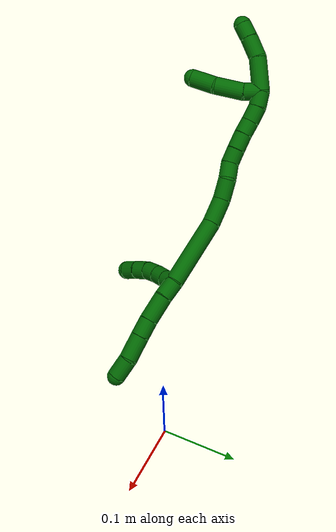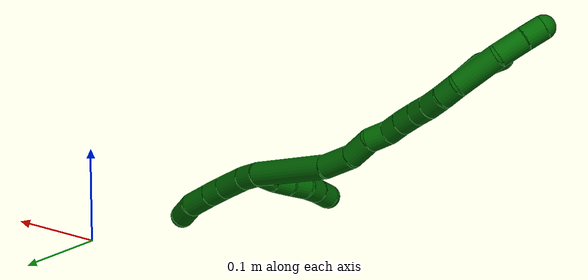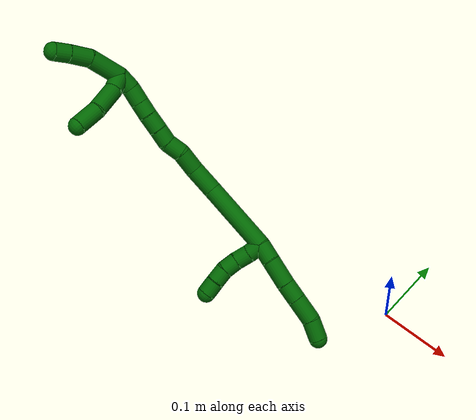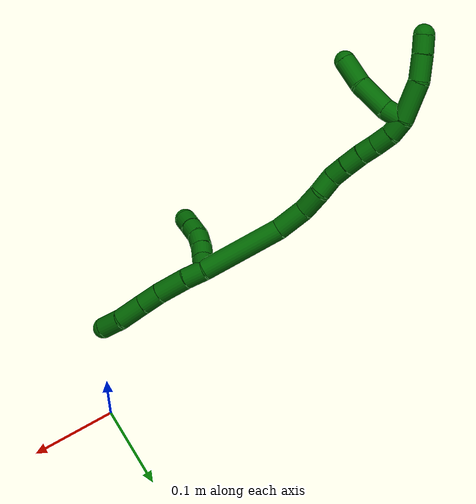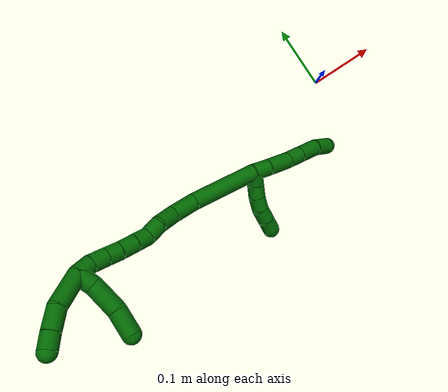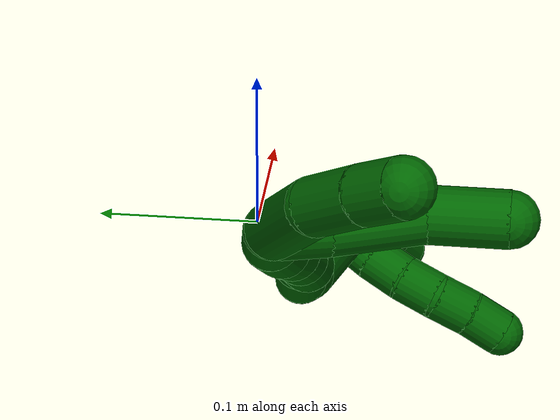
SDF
<sdf version="1.7">
 <world name="default">
  <model name="6">
   <static>0</static>
   <link name="6">
    <collision name="collision-cylinder-e_1_2_8">
     <pose>0.001411 0.000863 -0.012428 -3.07225 0.11276 -2.03953</pose>
     <geometry><cylinder><radius>0.0125</radius><length>0.025075</length></cylinder></geometry>
     <surface>
      <friction><ode><mu>1.16</mu><mu2>1.16</mu2><slip1>0</slip1><slip2>0</slip2></ode></friction>
      <contact><ode><kp>1e+06</kp><kd>1</kd><max_vel>0</max_vel><min_depth>0.001</min_depth></ode></contact>
     </surface>
    </collision>
    <visual name="visual-cylinder-e_1_2_8">
     <pose>0.001411 0.000863 -0.012428 -3.07225 0.11276 -2.03953</pose>
     <geometry><cylinder><radius>0.0125</radius><length>0.025075</length></cylinder></geometry>
     <material><ambient>0 0.392157 0.003922 1</ambient></material>
    </visual>
    <collision name="collision-cylinder-e_2_8_9">
     <pose>0.006269 0.001611 -0.043036 3.13523 0.18739 3.07389</pose>
     <geometry><cylinder><radius>0.0125</radius><length>0.03701</length></cylinder></geometry>
     <surface>
      <friction><ode><mu>1.16</mu><mu2>1.16</mu2><slip1>0</slip1><slip2>0</slip2></ode></friction>
      <contact><ode><kp>1e+06</kp><kd>1</kd><max_vel>0</max_vel><min_depth>0.001</min_depth></ode></contact>
     </surface>
    </collision>
    <visual name="visual-cylinder-e_2_8_9">
     <pose>0.006269 0.001611 -0.043036 3.13523 0.18739 3.07389</pose>
     <geometry><cylinder><radius>0.0125</radius><length>0.03701</length></cylinder></geometry>
     <material><ambient>0 0.392157 0.003922 1</ambient></material>
    </visual>
    <collision name="collision-cylinder-e_3_9_10">
     <pose>0.012014 0.000511 -0.073403 3.06106 0.185745 2.32506</pose>
     <geometry><cylinder><radius>0.0125</radius><length>0.02488</length></cylinder></geometry>
     <surface>
      <friction><ode><mu>1.16</mu><mu2>1.16</mu2><slip1>0</slip1><slip2>0</slip2></ode></friction>
      <contact><ode><kp>1e+06</kp><kd>1</kd><max_vel>0</max_vel><min_depth>0.001</min_depth></ode></contact>
     </surface>
    </collision>
    <visual name="visual-cylinder-e_3_9_10">
     <pose>0.012014 0.000511 -0.073403 3.06106 0.185745 2.32506</pose>
     <geometry><cylinder><radius>0.0125</radius><length>0.02488</length></cylinder></geometry>
     <material><ambient>0 0.392157 0.003922 1</ambient></material>
    </visual>
    <collision name="collision-cylinder-e_4_10_11">
     <pose>0.017793 -0.002055 -0.102342 3.0474 0.20404 2.2787</pose>
     <geometry><cylinder><radius>0.0125</radius><length>0.034367</length></cylinder></geometry>
     <surface>
      <friction><ode><mu>1.16</mu><mu2>1.16</mu2><slip1>0</slip1><slip2>0</slip2></ode></friction>
      <contact><ode><kp>1e+06</kp><kd>1</kd><max_vel>0</max_vel><min_depth>0.001</min_depth></ode></contact>
     </surface>
    </collision>
    <visual name="visual-cylinder-e_4_10_11">
     <pose>0.017793 -0.002055 -0.102342 3.0474 0.20404 2.2787</pose>
     <geometry><cylinder><radius>0.0125</radius><length>0.034367</length></cylinder></geometry>
     <material><ambient>0 0.392157 0.003922 1</ambient></material>
    </visual>
    <collision name="collision-cylinder-e_5_11_6">
     <pose>0.027216 -0.003188 -0.132132 -3.10712 0.427359 -2.98303</pose>
     <geometry><cylinder><radius>0.0125</radius><length>0.028668</length></cylinder></geometry>
     <surface>
      <friction><ode><mu>1.16</mu><mu2>1.16</mu2><slip1>0</slip1><slip2>0</slip2></ode></friction>
      <contact><ode><kp>1e+06</kp><kd>1</kd><max_vel>0</max_vel><min_depth>0.001</min_depth></ode></contact>
     </surface>
    </collision>
    <visual name="visual-cylinder-e_5_11_6">
     <pose>0.027216 -0.003188 -0.132132 -3.10712 0.427359 -2.98303</pose>
     <geometry><cylinder><radius>0.0125</radius><length>0.028668</length></cylinder></geometry>
     <material><ambient>0 0.392157 0.003922 1</ambient></material>
    </visual>
    <collision name="collision-cylinder-e_1_2_12">
     <pose>0.008198 0.005669 0.000812 -1.42847 0.961064 -0.848889</pose>
     <geometry><cylinder><radius>0.0125</radius><length>0.02</length></cylinder></geometry>
     <surface>
      <friction><ode><mu>1.16</mu><mu2>1.16</mu2><slip1>0</slip1><slip2>0</slip2></ode></friction>
      <contact><ode><kp>1e+06</kp><kd>1</kd><max_vel>0</max_vel><min_depth>0.001</min_depth></ode></contact>
     </surface>
    </collision>
    <visual name="visual-cylinder-e_1_2_12">
     <pose>0.008198 0.005669 0.000812 -1.42847 0.961064 -0.848889</pose>
     <geometry><cylinder><radius>0.0125</radius><length>0.02</length></cylinder></geometry>
     <material><ambient>0 0.392157 0.003922 1</ambient></material>
    </visual>
    <collision name="collision-cylinder-e_2_12_13">
     <pose>0.023837 0.017802 0.003311 -1.31555 0.839157 -0.663722</pose>
     <geometry><cylinder><radius>0.0125</radius><length>0.02</length></cylinder></geometry>
     <surface>
      <friction><ode><mu>1.16</mu><mu2>1.16</mu2><slip1>0</slip1><slip2>0</slip2></ode></friction>
      <contact><ode><kp>1e+06</kp><kd>1</kd><max_vel>0</max_vel><min_depth>0.001</min_depth></ode></contact>
     </surface>
    </collision>
    <visual name="visual-cylinder-e_2_12_13">
     <pose>0.023837 0.017802 0.003311 -1.31555 0.839157 -0.663722</pose>
     <geometry><cylinder><radius>0.0125</radius><length>0.02</length></cylinder></geometry>
     <material><ambient>0 0.392157 0.003922 1</ambient></material>
    </visual>
    <collision name="collision-cylinder-e_3_13_14">
     <pose>0.038398 0.031272 0.005459 -1.50516 0.792399 -0.746705</pose>
     <geometry><cylinder><radius>0.0125</radius><length>0.02</length></cylinder></geometry>
     <surface>
      <friction><ode><mu>1.16</mu><mu2>1.16</mu2><slip1>0</slip1><slip2>0</slip2></ode></friction>
      <contact><ode><kp>1e+06</kp><kd>1</kd><max_vel>0</max_vel><min_depth>0.001</min_depth></ode></contact>
     </surface>
    </collision>
    <visual name="visual-cylinder-e_3_13_14">
     <pose>0.038398 0.031272 0.005459 -1.50516 0.792399 -0.746705</pose>
     <geometry><cylinder><radius>0.0125</radius><length>0.02</length></cylinder></geometry>
     <material><ambient>0 0.392157 0.003922 1</ambient></material>
    </visual>
    <collision name="collision-cylinder-e_4_14_15">
     <pose>0.052709 0.044924 0.003886 -1.86776 0.802468 -1.0414</pose>
     <geometry><cylinder><radius>0.0125</radius><length>0.02</length></cylinder></geometry>
     <surface>
      <friction><ode><mu>1.16</mu><mu2>1.16</mu2><slip1>0</slip1><slip2>0</slip2></ode></friction>
      <contact><ode><kp>1e+06</kp><kd>1</kd><max_vel>0</max_vel><min_depth>0.001</min_depth></ode></contact>
     </surface>
    </collision>
    <visual name="visual-cylinder-e_4_14_15">
     <pose>0.052709 0.044924 0.003886 -1.86776 0.802468 -1.0414</pose>
     <geometry><cylinder><radius>0.0125</radius><length>0.02</length></cylinder></geometry>
     <material><ambient>0 0.392157 0.003922 1</ambient></material>
    </visual>
    <collision name="collision-cylinder-e_5_15_5">
     <pose>0.067653 0.057515 -0.000275 -1.91439 0.887221 -1.18711</pose>
     <geometry><cylinder><radius>0.0125</radius><length>0.02</length></cylinder></geometry>
     <surface>
      <friction><ode><mu>1.16</mu><mu2>1.16</mu2><slip1>0</slip1><slip2>0</slip2></ode></friction>
      <contact><ode><kp>1e+06</kp><kd>1</kd><max_vel>0</max_vel><min_depth>0.001</min_depth></ode></contact>
     </surface>
    </collision>
    <visual name="visual-cylinder-e_5_15_5">
     <pose>0.067653 0.057515 -0.000275 -1.91439 0.887221 -1.18711</pose>
     <geometry><cylinder><radius>0.0125</radius><length>0.02</length></cylinder></geometry>
     <material><ambient>0 0.392157 0.003922 1</ambient></material>
    </visual>
    <collision name="collision-cylinder-e_1_2_16">
     <pose>0.002024 -5.2e-05 0.049777 0.001042 0.04064 2.1e-05</pose>
     <geometry><cylinder><radius>0.0125</radius><length>0.099637</length></cylinder></geometry>
     <surface>
      <friction><ode><mu>1.16</mu><mu2>1.16</mu2><slip1>0</slip1><slip2>0</slip2></ode></friction>
      <contact><ode><kp>1e+06</kp><kd>1</kd><max_vel>0</max_vel><min_depth>0.001</min_depth></ode></contact>
     </surface>
    </collision>
    <visual name="visual-cylinder-e_1_2_16">
     <pose>0.002024 -5.2e-05 0.049777 0.001042 0.04064 2.1e-05</pose>
     <geometry><cylinder><radius>0.0125</radius><length>0.099637</length></cylinder></geometry>
     <material><ambient>0 0.392157 0.003922 1</ambient></material>
    </visual>
    <collision name="collision-cylinder-e_2_16_17">
     <pose>0.002241 0.002695 0.118002 -0.150588 -0.096533 0.007288</pose>
     <geometry><cylinder><radius>0.0125</radius><length>0.037491</length></cylinder></geometry>
     <surface>
      <friction><ode><mu>1.16</mu><mu2>1.16</mu2><slip1>0</slip1><slip2>0</slip2></ode></friction>
      <contact><ode><kp>1e+06</kp><kd>1</kd><max_vel>0</max_vel><min_depth>0.001</min_depth></ode></contact>
     </surface>
    </collision>
    <visual name="visual-cylinder-e_2_16_17">
     <pose>0.002241 0.002695 0.118002 -0.150588 -0.096533 0.007288</pose>
     <geometry><cylinder><radius>0.0125</radius><length>0.037491</length></cylinder></geometry>
     <material><ambient>0 0.392157 0.003922 1</ambient></material>
    </visual>
    <collision name="collision-cylinder-e_3_17_18">
     <pose>-0.004422 0.00988 0.149699 -0.319628 -0.33485 0.05447</pose>
     <geometry><cylinder><radius>0.0125</radius><length>0.029556</length></cylinder></geometry>
     <surface>
      <friction><ode><mu>1.16</mu><mu2>1.16</mu2><slip1>0</slip1><slip2>0</slip2></ode></friction>
      <contact><ode><kp>1e+06</kp><kd>1</kd><max_vel>0</max_vel><min_depth>0.001</min_depth></ode></contact>
     </surface>
    </collision>
    <visual name="visual-cylinder-e_3_17_18">
     <pose>-0.004422 0.00988 0.149699 -0.319628 -0.33485 0.05447</pose>
     <geometry><cylinder><radius>0.0125</radius><length>0.029556</length></cylinder></geometry>
     <material><ambient>0 0.392157 0.003922 1</ambient></material>
    </visual>
    <collision name="collision-cylinder-e_4_18_19">
     <pose>-0.009509 0.018632 0.17364 -0.387801 -0.019988 0.003925</pose>
     <geometry><cylinder><radius>0.0125</radius><length>0.023101</length></cylinder></geometry>
     <surface>
      <friction><ode><mu>1.16</mu><mu2>1.16</mu2><slip1>0</slip1><slip2>0</slip2></ode></friction>
      <contact><ode><kp>1e+06</kp><kd>1</kd><max_vel>0</max_vel><min_depth>0.001</min_depth></ode></contact>
     </surface>
    </collision>
    <visual name="visual-cylinder-e_4_18_19">
     <pose>-0.009509 0.018632 0.17364 -0.387801 -0.019988 0.003925</pose>
     <geometry><cylinder><radius>0.0125</radius><length>0.023101</length></cylinder></geometry>
     <material><ambient>0 0.392157 0.003922 1</ambient></material>
    </visual>
    <collision name="collision-cylinder-e_5_19_20">
     <pose>-0.012785 0.024711 0.194471 -0.167238 -0.28788 0.024295</pose>
     <geometry><cylinder><radius>0.0125</radius><length>0.021451</length></cylinder></geometry>
     <surface>
      <friction><ode><mu>1.16</mu><mu2>1.16</mu2><slip1>0</slip1><slip2>0</slip2></ode></friction>
      <contact><ode><kp>1e+06</kp><kd>1</kd><max_vel>0</max_vel><min_depth>0.001</min_depth></ode></contact>
     </surface>
    </collision>
    <visual name="visual-cylinder-e_5_19_20">
     <pose>-0.012785 0.024711 0.194471 -0.167238 -0.28788 0.024295</pose>
     <geometry><cylinder><radius>0.0125</radius><length>0.021451</length></cylinder></geometry>
     <material><ambient>0 0.392157 0.003922 1</ambient></material>
    </visual>
    <collision name="collision-cylinder-e_6_20_21">
     <pose>-0.018609 0.02803 0.215887 -0.141543 -0.239261 0.017042</pose>
     <geometry><cylinder><radius>0.0125</radius><length>0.023447</length></cylinder></geometry>
     <surface>
      <friction><ode><mu>1.16</mu><mu2>1.16</mu2><slip1>0</slip1><slip2>0</slip2></ode></friction>
      <contact><ode><kp>1e+06</kp><kd>1</kd><max_vel>0</max_vel><min_depth>0.001</min_depth></ode></contact>
     </surface>
    </collision>
    <visual name="visual-cylinder-e_6_20_21">
     <pose>-0.018609 0.02803 0.215887 -0.141543 -0.239261 0.017042</pose>
     <geometry><cylinder><radius>0.0125</radius><length>0.023447</length></cylinder></geometry>
     <material><ambient>0 0.392157 0.003922 1</ambient></material>
    </visual>
    <collision name="collision-cylinder-e_7_21_22">
     <pose>-0.023626 0.030252 0.236912 -0.063071 -0.225313 0.007138</pose>
     <geometry><cylinder><radius>0.0125</radius><length>0.020044</length></cylinder></geometry>
     <surface>
      <friction><ode><mu>1.16</mu><mu2>1.16</mu2><slip1>0</slip1><slip2>0</slip2></ode></friction>
      <contact><ode><kp>1e+06</kp><kd>1</kd><max_vel>0</max_vel><min_depth>0.001</min_depth></ode></contact>
     </surface>
    </collision>
    <visual name="visual-cylinder-e_7_21_22">
     <pose>-0.023626 0.030252 0.236912 -0.063071 -0.225313 0.007138</pose>
     <geometry><cylinder><radius>0.0125</radius><length>0.020044</length></cylinder></geometry>
     <material><ambient>0 0.392157 0.003922 1</ambient></material>
    </visual>
    <collision name="collision-cylinder-e_8_22_23">
     <pose>-0.029192 0.032109 0.257696 -0.112029 -0.291143 0.016441</pose>
     <geometry><cylinder><radius>0.0125</radius><length>0.023183</length></cylinder></geometry>
     <surface>
      <friction><ode><mu>1.16</mu><mu2>1.16</mu2><slip1>0</slip1><slip2>0</slip2></ode></friction>
      <contact><ode><kp>1e+06</kp><kd>1</kd><max_vel>0</max_vel><min_depth>0.001</min_depth></ode></contact>
     </surface>
    </collision>
    <visual name="visual-cylinder-e_8_22_23">
     <pose>-0.029192 0.032109 0.257696 -0.112029 -0.291143 0.016441</pose>
     <geometry><cylinder><radius>0.0125</radius><length>0.023183</length></cylinder></geometry>
     <material><ambient>0 0.392157 0.003922 1</ambient></material>
    </visual>
    <collision name="collision-cylinder-e_9_23_1">
     <pose>-0.035541 0.03717 0.278643 -0.367776 -0.277118 0.051862</pose>
     <geometry><cylinder><radius>0.0125</radius><length>0.02209</length></cylinder></geometry>
     <surface>
      <friction><ode><mu>1.16</mu><mu2>1.16</mu2><slip1>0</slip1><slip2>0</slip2></ode></friction>
      <contact><ode><kp>1e+06</kp><kd>1</kd><max_vel>0</max_vel><min_depth>0.001</min_depth></ode></contact>
     </surface>
    </collision>
    <visual name="visual-cylinder-e_9_23_1">
     <pose>-0.035541 0.03717 0.278643 -0.367776 -0.277118 0.051862</pose>
     <geometry><cylinder><radius>0.0125</radius><length>0.02209</length></cylinder></geometry>
     <material><ambient>0 0.392157 0.003922 1</ambient></material>
    </visual>
    <collision name="collision-cylinder-e_1_1_24">
     <pose>-0.035335 0.050813 0.282672 -2.11052 0.274789 -0.478659</pose>
     <geometry><cylinder><radius>0.0125</radius><length>0.023793</length></cylinder></geometry>
     <surface>
      <friction><ode><mu>1.16</mu><mu2>1.16</mu2><slip1>0</slip1><slip2>0</slip2></ode></friction>
      <contact><ode><kp>1e+06</kp><kd>1</kd><max_vel>0</max_vel><min_depth>0.001</min_depth></ode></contact>
     </surface>
    </collision>
    <visual name="visual-cylinder-e_1_1_24">
     <pose>-0.035335 0.050813 0.282672 -2.11052 0.274789 -0.478659</pose>
     <geometry><cylinder><radius>0.0125</radius><length>0.023793</length></cylinder></geometry>
     <material><ambient>0 0.392157 0.003922 1</ambient></material>
    </visual>
    <collision name="collision-cylinder-e_2_24_25">
     <pose>-0.028019 0.079953 0.270849 -1.86905 0.199599 -0.269439</pose>
     <geometry><cylinder><radius>0.0125</radius><length>0.04124</length></cylinder></geometry>
     <surface>
      <friction><ode><mu>1.16</mu><mu2>1.16</mu2><slip1>0</slip1><slip2>0</slip2></ode></friction>
      <contact><ode><kp>1e+06</kp><kd>1</kd><max_vel>0</max_vel><min_depth>0.001</min_depth></ode></contact>
     </surface>
    </collision>
    <visual name="visual-cylinder-e_2_24_25">
     <pose>-0.028019 0.079953 0.270849 -1.86905 0.199599 -0.269439</pose>
     <geometry><cylinder><radius>0.0125</radius><length>0.04124</length></cylinder></geometry>
     <material><ambient>0 0.392157 0.003922 1</ambient></material>
    </visual>
    <collision name="collision-cylinder-e_3_25_4">
     <pose>-0.017573 0.115458 0.263103 -1.68199 0.372152 -0.414834</pose>
     <geometry><cylinder><radius>0.0125</radius><length>0.034967</length></cylinder></geometry>
     <surface>
      <friction><ode><mu>1.16</mu><mu2>1.16</mu2><slip1>0</slip1><slip2>0</slip2></ode></friction>
      <contact><ode><kp>1e+06</kp><kd>1</kd><max_vel>0</max_vel><min_depth>0.001</min_depth></ode></contact>
     </surface>
    </collision>
    <visual name="visual-cylinder-e_3_25_4">
     <pose>-0.017573 0.115458 0.263103 -1.68199 0.372152 -0.414834</pose>
     <geometry><cylinder><radius>0.0125</radius><length>0.034967</length></cylinder></geometry>
     <material><ambient>0 0.392157 0.003922 1</ambient></material>
    </visual>
    <collision name="collision-cylinder-e_1_1_26">
     <pose>-0.042319 0.055535 0.307024 -0.667107 -0.158456 0.055006</pose>
     <geometry><cylinder><radius>0.0125</radius><length>0.047612</length></cylinder></geometry>
     <surface>
      <friction><ode><mu>1.16</mu><mu2>1.16</mu2><slip1>0</slip1><slip2>0</slip2></ode></friction>
      <contact><ode><kp>1e+06</kp><kd>1</kd><max_vel>0</max_vel><min_depth>0.001</min_depth></ode></contact>
     </surface>
    </collision>
    <visual name="visual-cylinder-e_1_1_26">
     <pose>-0.042319 0.055535 0.307024 -0.667107 -0.158456 0.055006</pose>
     <geometry><cylinder><radius>0.0125</radius><length>0.047612</length></cylinder></geometry>
     <material><ambient>0 0.392157 0.003922 1</ambient></material>
    </visual>
    <collision name="collision-cylinder-e_2_26_27">
     <pose>-0.046042 0.082392 0.334503 -0.939061 0.002194 -0.001113</pose>
     <geometry><cylinder><radius>0.0125</radius><length>0.030516</length></cylinder></geometry>
     <surface>
      <friction><ode><mu>1.16</mu><mu2>1.16</mu2><slip1>0</slip1><slip2>0</slip2></ode></friction>
      <contact><ode><kp>1e+06</kp><kd>1</kd><max_vel>0</max_vel><min_depth>0.001</min_depth></ode></contact>
     </surface>
    </collision>
    <visual name="visual-cylinder-e_2_26_27">
     <pose>-0.046042 0.082392 0.334503 -0.939061 0.002194 -0.001113</pose>
     <geometry><cylinder><radius>0.0125</radius><length>0.030516</length></cylinder></geometry>
     <material><ambient>0 0.392157 0.003922 1</ambient></material>
    </visual>
    <collision name="collision-cylinder-e_3_27_3">
     <pose>-0.045543 0.103865 0.34947 -0.994188 0.042591 -0.02311</pose>
     <geometry><cylinder><radius>0.0125</radius><length>0.021873</length></cylinder></geometry>
     <surface>
      <friction><ode><mu>1.16</mu><mu2>1.16</mu2><slip1>0</slip1><slip2>0</slip2></ode></friction>
      <contact><ode><kp>1e+06</kp><kd>1</kd><max_vel>0</max_vel><min_depth>0.001</min_depth></ode></contact>
     </surface>
    </collision>
    <visual name="visual-cylinder-e_3_27_3">
     <pose>-0.045543 0.103865 0.34947 -0.994188 0.042591 -0.02311</pose>
     <geometry><cylinder><radius>0.0125</radius><length>0.021873</length></cylinder></geometry>
     <material><ambient>0 0.392157 0.003922 1</ambient></material>
    </visual>
    <collision name="collision-sphere-3">
     <pose>-0.045078 0.113025 0.355427 0 -0 0</pose>
     <geometry><sphere><radius>0.0125</radius></sphere></geometry>
     <surface>
      <friction><ode><mu>1.16</mu><mu2>1.16</mu2><slip1>0</slip1><slip2>0</slip2></ode></friction>
      <contact><ode><kp>1e+06</kp><kd>1</kd><max_vel>0</max_vel><min_depth>0.001</min_depth></ode></contact>
     </surface>
    </collision>
    <visual name="visual-sphere-3">
     <pose>-0.045078 0.113025 0.355427 0 -0 0</pose>
     <geometry><sphere><radius>0.0125</radius></sphere></geometry>
     <material><ambient>0 0.392157 0.003922 1</ambient></material>
    </visual>
    <collision name="collision-sphere-27">
     <pose>-0.046009 0.094705 0.343513 0 -0 0</pose>
     <geometry><sphere><radius>0.0125</radius></sphere></geometry>
     <surface>
      <friction><ode><mu>1.16</mu><mu2>1.16</mu2><slip1>0</slip1><slip2>0</slip2></ode></friction>
      <contact><ode><kp>1e+06</kp><kd>1</kd><max_vel>0</max_vel><min_depth>0.001</min_depth></ode></contact>
     </surface>
    </collision>
    <visual name="visual-sphere-27">
     <pose>-0.046009 0.094705 0.343513 0 -0 0</pose>
     <geometry><sphere><radius>0.0125</radius></sphere></geometry>
     <material><ambient>0 0.392157 0.003922 1</ambient></material>
    </visual>
    <collision name="collision-sphere-26">
     <pose>-0.046076 0.070079 0.325492 0 -0 0</pose>
     <geometry><sphere><radius>0.0125</radius></sphere></geometry>
     <surface>
      <friction><ode><mu>1.16</mu><mu2>1.16</mu2><slip1>0</slip1><slip2>0</slip2></ode></friction>
      <contact><ode><kp>1e+06</kp><kd>1</kd><max_vel>0</max_vel><min_depth>0.001</min_depth></ode></contact>
     </surface>
    </collision>
    <visual name="visual-sphere-26">
     <pose>-0.046076 0.070079 0.325492 0 -0 0</pose>
     <geometry><sphere><radius>0.0125</radius></sphere></geometry>
     <material><ambient>0 0.392157 0.003922 1</ambient></material>
    </visual>
    <collision name="collision-sphere-4">
     <pose>-0.011215 0.131644 0.261295 0 -0 0</pose>
     <geometry><sphere><radius>0.0125</radius></sphere></geometry>
     <surface>
      <friction><ode><mu>1.16</mu><mu2>1.16</mu2><slip1>0</slip1><slip2>0</slip2></ode></friction>
      <contact><ode><kp>1e+06</kp><kd>1</kd><max_vel>0</max_vel><min_depth>0.001</min_depth></ode></contact>
     </surface>
    </collision>
    <visual name="visual-sphere-4">
     <pose>-0.011215 0.131644 0.261295 0 -0 0</pose>
     <geometry><sphere><radius>0.0125</radius></sphere></geometry>
     <material><ambient>0 0.392157 0.003922 1</ambient></material>
    </visual>
    <collision name="collision-sphere-25">
     <pose>-0.02393 0.099272 0.26491 0 -0 0</pose>
     <geometry><sphere><radius>0.0125</radius></sphere></geometry>
     <surface>
      <friction><ode><mu>1.16</mu><mu2>1.16</mu2><slip1>0</slip1><slip2>0</slip2></ode></friction>
      <contact><ode><kp>1e+06</kp><kd>1</kd><max_vel>0</max_vel><min_depth>0.001</min_depth></ode></contact>
     </surface>
    </collision>
    <visual name="visual-sphere-25">
     <pose>-0.02393 0.099272 0.26491 0 -0 0</pose>
     <geometry><sphere><radius>0.0125</radius></sphere></geometry>
     <material><ambient>0 0.392157 0.003922 1</ambient></material>
    </visual>
    <collision name="collision-sphere-24">
     <pose>-0.032107 0.060635 0.276788 0 -0 0</pose>
     <geometry><sphere><radius>0.0125</radius></sphere></geometry>
     <surface>
      <friction><ode><mu>1.16</mu><mu2>1.16</mu2><slip1>0</slip1><slip2>0</slip2></ode></friction>
      <contact><ode><kp>1e+06</kp><kd>1</kd><max_vel>0</max_vel><min_depth>0.001</min_depth></ode></contact>
     </surface>
    </collision>
    <visual name="visual-sphere-24">
     <pose>-0.032107 0.060635 0.276788 0 -0 0</pose>
     <geometry><sphere><radius>0.0125</radius></sphere></geometry>
     <material><ambient>0 0.392157 0.003922 1</ambient></material>
    </visual>
    <collision name="collision-sphere-1">
     <pose>-0.038563 0.04099 0.288556 0 -0 0</pose>
     <geometry><sphere><radius>0.0125</radius></sphere></geometry>
     <surface>
      <friction><ode><mu>1.16</mu><mu2>1.16</mu2><slip1>0</slip1><slip2>0</slip2></ode></friction>
      <contact><ode><kp>1e+06</kp><kd>1</kd><max_vel>0</max_vel><min_depth>0.001</min_depth></ode></contact>
     </surface>
    </collision>
    <visual name="visual-sphere-1">
     <pose>-0.038563 0.04099 0.288556 0 -0 0</pose>
     <geometry><sphere><radius>0.0125</radius></sphere></geometry>
     <material><ambient>0 0.392157 0.003922 1</ambient></material>
    </visual>
    <collision name="collision-sphere-23">
     <pose>-0.032519 0.033351 0.26873 0 -0 0</pose>
     <geometry><sphere><radius>0.0125</radius></sphere></geometry>
     <surface>
      <friction><ode><mu>1.16</mu><mu2>1.16</mu2><slip1>0</slip1><slip2>0</slip2></ode></friction>
      <contact><ode><kp>1e+06</kp><kd>1</kd><max_vel>0</max_vel><min_depth>0.001</min_depth></ode></contact>
     </surface>
    </collision>
    <visual name="visual-sphere-23">
     <pose>-0.032519 0.033351 0.26873 0 -0 0</pose>
     <geometry><sphere><radius>0.0125</radius></sphere></geometry>
     <material><ambient>0 0.392157 0.003922 1</ambient></material>
    </visual>
    <collision name="collision-sphere-22">
     <pose>-0.025865 0.030868 0.246661 0 -0 0</pose>
     <geometry><sphere><radius>0.0125</radius></sphere></geometry>
     <surface>
      <friction><ode><mu>1.16</mu><mu2>1.16</mu2><slip1>0</slip1><slip2>0</slip2></ode></friction>
      <contact><ode><kp>1e+06</kp><kd>1</kd><max_vel>0</max_vel><min_depth>0.001</min_depth></ode></contact>
     </surface>
    </collision>
    <visual name="visual-sphere-22">
     <pose>-0.025865 0.030868 0.246661 0 -0 0</pose>
     <geometry><sphere><radius>0.0125</radius></sphere></geometry>
     <material><ambient>0 0.392157 0.003922 1</ambient></material>
    </visual>
    <collision name="collision-sphere-21">
     <pose>-0.021387 0.029637 0.227163 0 -0 0</pose>
     <geometry><sphere><radius>0.0125</radius></sphere></geometry>
     <surface>
      <friction><ode><mu>1.16</mu><mu2>1.16</mu2><slip1>0</slip1><slip2>0</slip2></ode></friction>
      <contact><ode><kp>1e+06</kp><kd>1</kd><max_vel>0</max_vel><min_depth>0.001</min_depth></ode></contact>
     </surface>
    </collision>
    <visual name="visual-sphere-21">
     <pose>-0.021387 0.029637 0.227163 0 -0 0</pose>
     <geometry><sphere><radius>0.0125</radius></sphere></geometry>
     <material><ambient>0 0.392157 0.003922 1</ambient></material>
    </visual>
    <collision name="collision-sphere-6">
     <pose>0.033157 -0.002738 -0.145169 0 -0 0</pose>
     <geometry><sphere><radius>0.0125</radius></sphere></geometry>
     <surface>
      <friction><ode><mu>1.16</mu><mu2>1.16</mu2><slip1>0</slip1><slip2>0</slip2></ode></friction>
      <contact><ode><kp>1e+06</kp><kd>1</kd><max_vel>0</max_vel><min_depth>0.001</min_depth></ode></contact>
     </surface>
    </collision>
    <visual name="visual-sphere-6">
     <pose>0.033157 -0.002738 -0.145169 0 -0 0</pose>
     <geometry><sphere><radius>0.0125</radius></sphere></geometry>
     <material><ambient>0 0.392157 0.003922 1</ambient></material>
    </visual>
    <collision name="collision-sphere-11">
     <pose>0.021275 -0.003638 -0.119095 0 -0 0</pose>
     <geometry><sphere><radius>0.0125</radius></sphere></geometry>
     <surface>
      <friction><ode><mu>1.16</mu><mu2>1.16</mu2><slip1>0</slip1><slip2>0</slip2></ode></friction>
      <contact><ode><kp>1e+06</kp><kd>1</kd><max_vel>0</max_vel><min_depth>0.001</min_depth></ode></contact>
     </surface>
    </collision>
    <visual name="visual-sphere-11">
     <pose>0.021275 -0.003638 -0.119095 0 -0 0</pose>
     <geometry><sphere><radius>0.0125</radius></sphere></geometry>
     <material><ambient>0 0.392157 0.003922 1</ambient></material>
    </visual>
    <collision name="collision-sphere-10">
     <pose>0.014311 -0.000472 -0.08559 0 -0 0</pose>
     <geometry><sphere><radius>0.0125</radius></sphere></geometry>
     <surface>
      <friction><ode><mu>1.16</mu><mu2>1.16</mu2><slip1>0</slip1><slip2>0</slip2></ode></friction>
      <contact><ode><kp>1e+06</kp><kd>1</kd><max_vel>0</max_vel><min_depth>0.001</min_depth></ode></contact>
     </surface>
    </collision>
    <visual name="visual-sphere-10">
     <pose>0.014311 -0.000472 -0.08559 0 -0 0</pose>
     <geometry><sphere><radius>0.0125</radius></sphere></geometry>
     <material><ambient>0 0.392157 0.003922 1</ambient></material>
    </visual>
    <collision name="collision-sphere-9">
     <pose>0.009716 0.001495 -0.061217 0 -0 0</pose>
     <geometry><sphere><radius>0.0125</radius></sphere></geometry>
     <surface>
      <friction><ode><mu>1.16</mu><mu2>1.16</mu2><slip1>0</slip1><slip2>0</slip2></ode></friction>
      <contact><ode><kp>1e+06</kp><kd>1</kd><max_vel>0</max_vel><min_depth>0.001</min_depth></ode></contact>
     </surface>
    </collision>
    <visual name="visual-sphere-9">
     <pose>0.009716 0.001495 -0.061217 0 -0 0</pose>
     <geometry><sphere><radius>0.0125</radius></sphere></geometry>
     <material><ambient>0 0.392157 0.003922 1</ambient></material>
    </visual>
    <collision name="collision-sphere-2">
     <geometry><sphere><radius>0.0125</radius></sphere></geometry>
     <surface>
      <friction><ode><mu>1.16</mu><mu2>1.16</mu2><slip1>0</slip1><slip2>0</slip2></ode></friction>
      <contact><ode><kp>1e+06</kp><kd>1</kd><max_vel>0</max_vel><min_depth>0.001</min_depth></ode></contact>
     </surface>
    </collision>
    <visual name="visual-sphere-2">
     <geometry><sphere><radius>0.0125</radius></sphere></geometry>
     <material><ambient>0 0.392157 0.003922 1</ambient></material>
    </visual>
    <collision name="collision-sphere-19">
     <pose>-0.00974 0.022999 0.18433 0 -0 0</pose>
     <geometry><sphere><radius>0.0125</radius></sphere></geometry>
     <surface>
      <friction><ode><mu>1.16</mu><mu2>1.16</mu2><slip1>0</slip1><slip2>0</slip2></ode></friction>
      <contact><ode><kp>1e+06</kp><kd>1</kd><max_vel>0</max_vel><min_depth>0.001</min_depth></ode></contact>
     </surface>
    </collision>
    <visual name="visual-sphere-19">
     <pose>-0.00974 0.022999 0.18433 0 -0 0</pose>
     <geometry><sphere><radius>0.0125</radius></sphere></geometry>
     <material><ambient>0 0.392157 0.003922 1</ambient></material>
    </visual>
    <collision name="collision-sphere-8">
     <pose>0.002821 0.001726 -0.024855 0 -0 0</pose>
     <geometry><sphere><radius>0.0125</radius></sphere></geometry>
     <surface>
      <friction><ode><mu>1.16</mu><mu2>1.16</mu2><slip1>0</slip1><slip2>0</slip2></ode></friction>
      <contact><ode><kp>1e+06</kp><kd>1</kd><max_vel>0</max_vel><min_depth>0.001</min_depth></ode></contact>
     </surface>
    </collision>
    <visual name="visual-sphere-8">
     <pose>0.002821 0.001726 -0.024855 0 -0 0</pose>
     <geometry><sphere><radius>0.0125</radius></sphere></geometry>
     <material><ambient>0 0.392157 0.003922 1</ambient></material>
    </visual>
    <collision name="collision-sphere-12">
     <pose>0.016396 0.011337 0.001625 0 -0 0</pose>
     <geometry><sphere><radius>0.0125</radius></sphere></geometry>
     <surface>
      <friction><ode><mu>1.16</mu><mu2>1.16</mu2><slip1>0</slip1><slip2>0</slip2></ode></friction>
      <contact><ode><kp>1e+06</kp><kd>1</kd><max_vel>0</max_vel><min_depth>0.001</min_depth></ode></contact>
     </surface>
    </collision>
    <visual name="visual-sphere-12">
     <pose>0.016396 0.011337 0.001625 0 -0 0</pose>
     <geometry><sphere><radius>0.0125</radius></sphere></geometry>
     <material><ambient>0 0.392157 0.003922 1</ambient></material>
    </visual>
    <collision name="collision-sphere-13">
     <pose>0.031278 0.024266 0.004998 0 -0 0</pose>
     <geometry><sphere><radius>0.0125</radius></sphere></geometry>
     <surface>
      <friction><ode><mu>1.16</mu><mu2>1.16</mu2><slip1>0</slip1><slip2>0</slip2></ode></friction>
      <contact><ode><kp>1e+06</kp><kd>1</kd><max_vel>0</max_vel><min_depth>0.001</min_depth></ode></contact>
     </surface>
    </collision>
    <visual name="visual-sphere-13">
     <pose>0.031278 0.024266 0.004998 0 -0 0</pose>
     <geometry><sphere><radius>0.0125</radius></sphere></geometry>
     <material><ambient>0 0.392157 0.003922 1</ambient></material>
    </visual>
    <collision name="collision-sphere-14">
     <pose>0.045518 0.038279 0.005919 0 -0 0</pose>
     <geometry><sphere><radius>0.0125</radius></sphere></geometry>
     <surface>
      <friction><ode><mu>1.16</mu><mu2>1.16</mu2><slip1>0</slip1><slip2>0</slip2></ode></friction>
      <contact><ode><kp>1e+06</kp><kd>1</kd><max_vel>0</max_vel><min_depth>0.001</min_depth></ode></contact>
     </surface>
    </collision>
    <visual name="visual-sphere-14">
     <pose>0.045518 0.038279 0.005919 0 -0 0</pose>
     <geometry><sphere><radius>0.0125</radius></sphere></geometry>
     <material><ambient>0 0.392157 0.003922 1</ambient></material>
    </visual>
    <collision name="collision-sphere-15">
     <pose>0.0599 0.051569 0.001852 0 -0 0</pose>
     <geometry><sphere><radius>0.0125</radius></sphere></geometry>
     <surface>
      <friction><ode><mu>1.16</mu><mu2>1.16</mu2><slip1>0</slip1><slip2>0</slip2></ode></friction>
      <contact><ode><kp>1e+06</kp><kd>1</kd><max_vel>0</max_vel><min_depth>0.001</min_depth></ode></contact>
     </surface>
    </collision>
    <visual name="visual-sphere-15">
     <pose>0.0599 0.051569 0.001852 0 -0 0</pose>
     <geometry><sphere><radius>0.0125</radius></sphere></geometry>
     <material><ambient>0 0.392157 0.003922 1</ambient></material>
    </visual>
    <collision name="collision-sphere-5">
     <pose>0.075406 0.063462 -0.002403 0 -0 0</pose>
     <geometry><sphere><radius>0.0125</radius></sphere></geometry>
     <surface>
      <friction><ode><mu>1.16</mu><mu2>1.16</mu2><slip1>0</slip1><slip2>0</slip2></ode></friction>
      <contact><ode><kp>1e+06</kp><kd>1</kd><max_vel>0</max_vel><min_depth>0.001</min_depth></ode></contact>
     </surface>
    </collision>
    <visual name="visual-sphere-5">
     <pose>0.075406 0.063462 -0.002403 0 -0 0</pose>
     <geometry><sphere><radius>0.0125</radius></sphere></geometry>
     <material><ambient>0 0.392157 0.003922 1</ambient></material>
    </visual>
    <collision name="collision-sphere-16">
     <pose>0.004048 -0.000104 0.099555 0 -0 0</pose>
     <geometry><sphere><radius>0.0125</radius></sphere></geometry>
     <surface>
      <friction><ode><mu>1.16</mu><mu2>1.16</mu2><slip1>0</slip1><slip2>0</slip2></ode></friction>
      <contact><ode><kp>1e+06</kp><kd>1</kd><max_vel>0</max_vel><min_depth>0.001</min_depth></ode></contact>
     </surface>
    </collision>
    <visual name="visual-sphere-16">
     <pose>0.004048 -0.000104 0.099555 0 -0 0</pose>
     <geometry><sphere><radius>0.0125</radius></sphere></geometry>
     <material><ambient>0 0.392157 0.003922 1</ambient></material>
    </visual>
    <collision name="collision-sphere-17">
     <pose>0.000435 0.005494 0.136449 0 -0 0</pose>
     <geometry><sphere><radius>0.0125</radius></sphere></geometry>
     <surface>
      <friction><ode><mu>1.16</mu><mu2>1.16</mu2><slip1>0</slip1><slip2>0</slip2></ode></friction>
      <contact><ode><kp>1e+06</kp><kd>1</kd><max_vel>0</max_vel><min_depth>0.001</min_depth></ode></contact>
     </surface>
    </collision>
    <visual name="visual-sphere-17">
     <pose>0.000435 0.005494 0.136449 0 -0 0</pose>
     <geometry><sphere><radius>0.0125</radius></sphere></geometry>
     <material><ambient>0 0.392157 0.003922 1</ambient></material>
    </visual>
    <collision name="collision-sphere-18">
     <pose>-0.009278 0.014266 0.162949 0 -0 0</pose>
     <geometry><sphere><radius>0.0125</radius></sphere></geometry>
     <surface>
      <friction><ode><mu>1.16</mu><mu2>1.16</mu2><slip1>0</slip1><slip2>0</slip2></ode></friction>
      <contact><ode><kp>1e+06</kp><kd>1</kd><max_vel>0</max_vel><min_depth>0.001</min_depth></ode></contact>
     </surface>
    </collision>
    <visual name="visual-sphere-18">
     <pose>-0.009278 0.014266 0.162949 0 -0 0</pose>
     <geometry><sphere><radius>0.0125</radius></sphere></geometry>
     <material><ambient>0 0.392157 0.003922 1</ambient></material>
    </visual>
    <collision name="collision-sphere-20">
     <pose>-0.01583 0.026423 0.204611 0 -0 0</pose>
     <geometry><sphere><radius>0.0125</radius></sphere></geometry>
     <surface>
      <friction><ode><mu>1.16</mu><mu2>1.16</mu2><slip1>0</slip1><slip2>0</slip2></ode></friction>
      <contact><ode><kp>1e+06</kp><kd>1</kd><max_vel>0</max_vel><min_depth>0.001</min_depth></ode></contact>
     </surface>
    </collision>
    <visual name="visual-sphere-20">
     <pose>-0.01583 0.026423 0.204611 0 -0 0</pose>
     <geometry><sphere><radius>0.0125</radius></sphere></geometry>
     <material><ambient>0 0.392157 0.003922 1</ambient></material>
    </visual>
    <inertial>
     <pose>-0.005285 0.030969 0.123632 0 -0 0</pose>
     <mass>0.75</mass>
     <inertia>
      <ixx>0.000126</ixx>
      <ixy>0</ixy>
      <ixz>0</ixz>
      <iyy>0.00015</iyy>
      <iyz>0</iyz>
      <izz>-2.9e-05</izz>
     </inertia>
    </inertial>
   </link>
   <pose>-0.167677 -0.067865 0.089637 0.848977 1.04071 -2.34749</pose>
  </model>
 </world>
</sdf>
